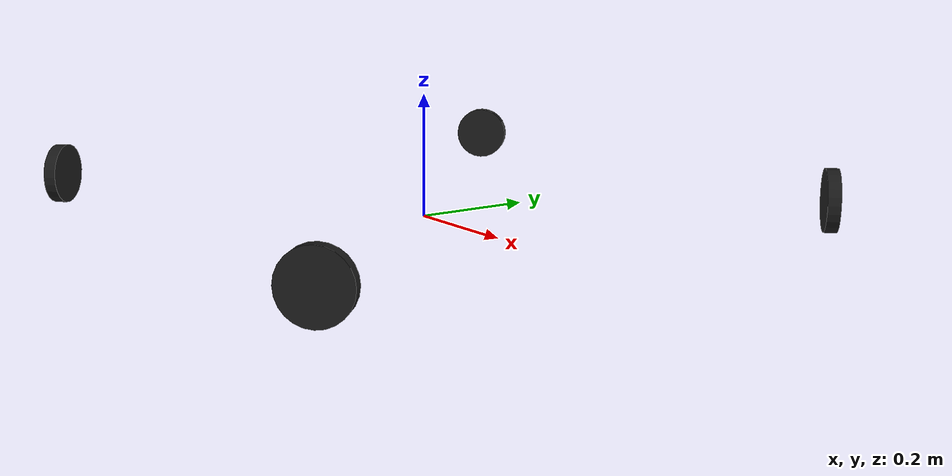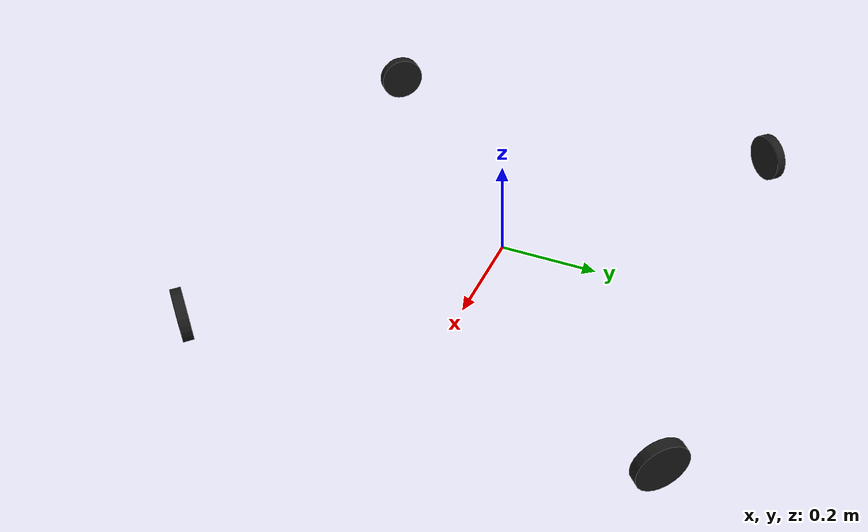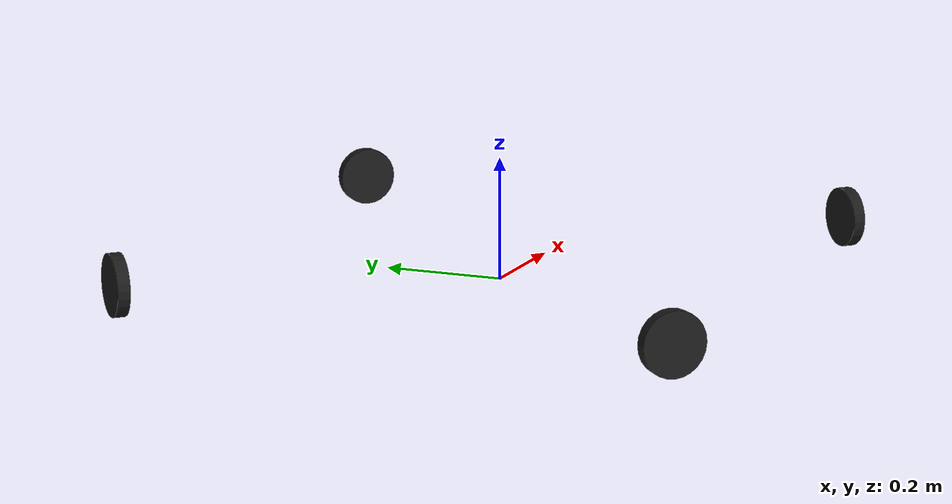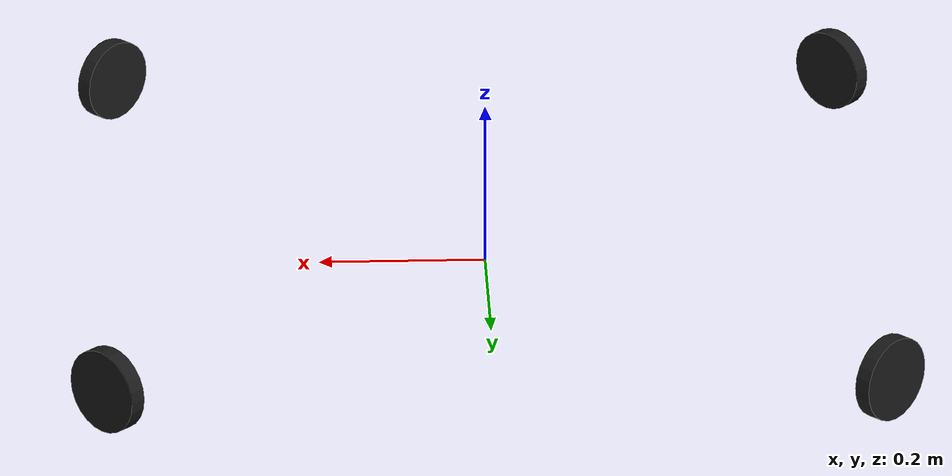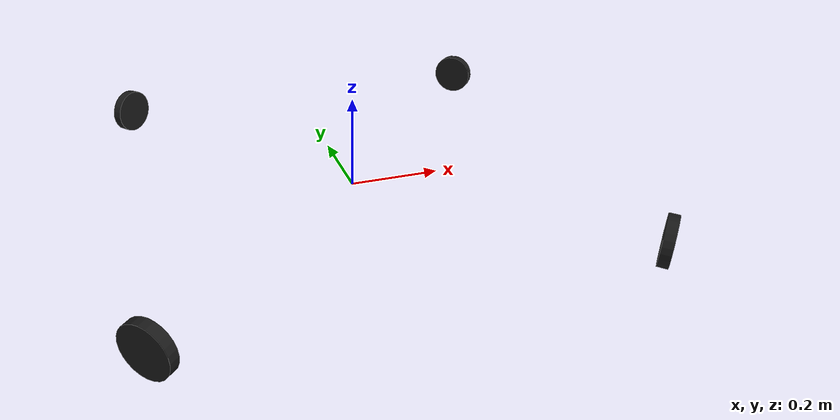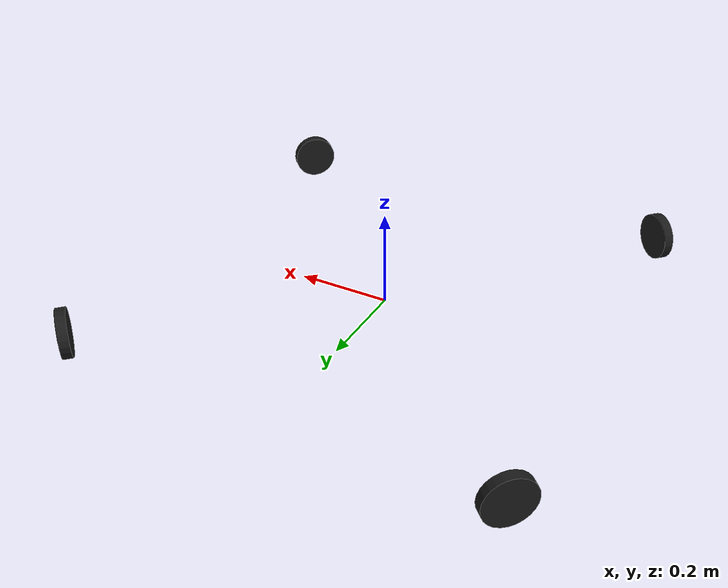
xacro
<?xml version="1.0"?>
<robot name="mecanum_robot" xmlns:xacro="http://ros.org/wiki/xacro">

  <!-- Parameters           -->
  <xacro:property name="wheel_radius" value="0.05"/>
  <xacro:property name="wheel_width"  value="0.02"/>
  <xacro:property name="color_alpha" value="1.0"/>

  <!-- Base link             -->
  <link name="base_link"/>

  <!-- Wheel module macro    -->
  <xacro:macro name="mecanum" params="wheel_name x y angle">

    <!-- wheel base link -->
    <link name="${wheel_name}_base_link"/>

    <!-- wheel base joint -->
    <joint name="${wheel_name}_base" type="fixed">
      <parent link="base_link"/>
      <child link="${wheel_name}_base_link"/>
      <origin xyz="${x} ${y} ${wheel_radius}" rpy="0 0 ${angle}"/>
      <axis xyz="0 0 1"/>
    </joint>

    <!-- wheel link -->
    <link name="${wheel_name}_link">
      <visual>
        <geometry>
          <cylinder radius="${wheel_radius}" length="${wheel_width}"/>
        </geometry>
        <origin rpy="1.5708 0 0"/>
        <material name="black">
          <color rgba="0.1 0.1 0.1 ${color_alpha}"/>
        </material>
      </visual>
    </link>

    <!-- wheel joint -->
    <joint name="${wheel_name}" type="continuous">
      <parent link="${wheel_name}_base_link"/>
      <child link="${wheel_name}_link"/>
      <axis xyz="0 1 0"/>
    </joint>

  </xacro:macro>

  <!-- Mecanum instances    -->
  <xacro:mecanum wheel_name="mecanum_wheel_0" x="0.45"  y="0.45"  angle="-0.7853981635"/>  <!-- angle = -45° -->
  <xacro:mecanum wheel_name="mecanum_wheel_1" x="-0.45" y="0.45"  angle="0.7853981635"/>  <!-- angle = +45° -->
  <xacro:mecanum wheel_name="mecanum_wheel_2" x="-0.45" y="-0.45" angle="2.3561944902"/>  <!-- angle = +135° -->
  <xacro:mecanum wheel_name="mecanum_wheel_3" x="0.45"  y="-0.45" angle="-2.3561944902"/>  <!-- angle = -135° -->

  <!-- Lidar Front          -->
  <link name="lidar_front"/>
  <joint name="base_to_lidar_front" type="fixed">
    <parent link="base_link"/>
    <child link="lidar_front"/>
    <origin xyz="0.4 0 0" rpy="0 0 0"/>
  </joint>

  <!-- Lidar Rear           -->
  <link name="lidar_rear"/>
  <joint name="base_to_lidar_rear" type="fixed">
    <parent link="base_link"/>
    <child link="lidar_rear"/>
    <origin xyz="-0.4 0 0" rpy="0 0 3.1415926535"/> <!-- rpy = 0 0 pi -->
  </joint>
</robot>
